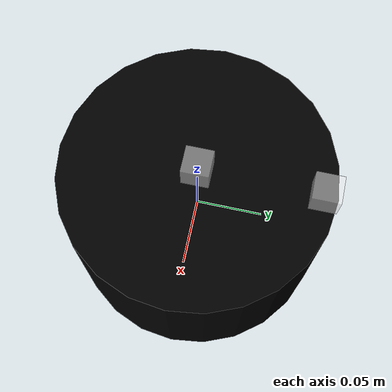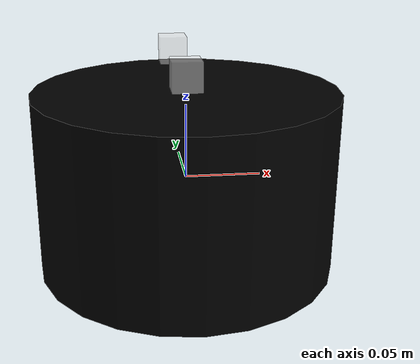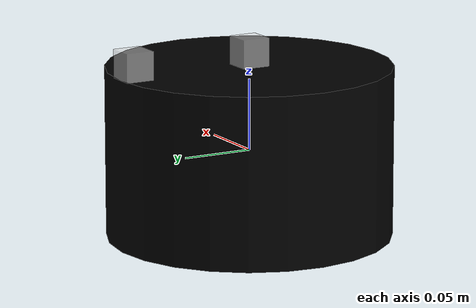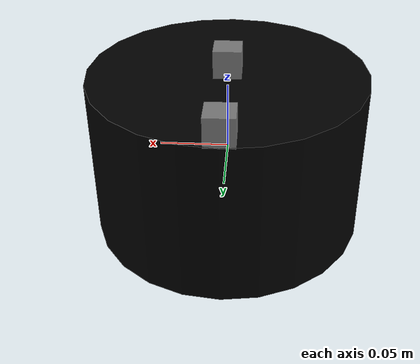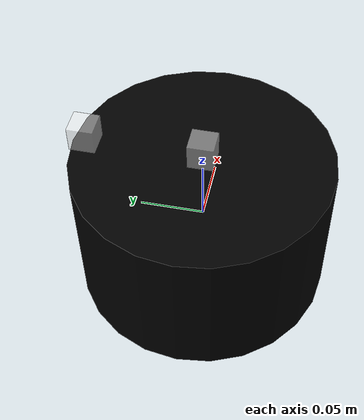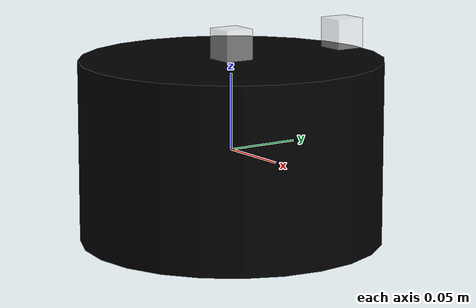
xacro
<?xml version="1.0" encoding="UTF-8"?>
<robot xmlns:xacro="http://www.ros.org/wiki/xacro" name="first_robot">
    <xacro:macro name="base_link" params="length radius">
        <link name="base_link">
            <visual>
                <origin rpy="0 0 0" xyz="0 0 0"/>
                <geometry>
                    <cylinder radius="${radius}" length="${length}"/>
                </geometry>
                <material name="Black">
                    <color rgba="0.0 0.0 0.0 1.0"/>
                </material>
            </visual>
        </link>
    </xacro:macro>
    <xacro:macro name="imu_link" params="name xyz">
        <link name="${name}_link">
            <visual>
                <origin rpy="0 0 0" xyz="0 0 0"/>
                <geometry>
                    <box size="0.02 0.02 0.02"/>
                </geometry>
                <material name="White">
                    <color rgba="1.0 1.0 1.0 0.5"/>
                </material>
            </visual>
        </link>

        <joint name="${name}_joint" type="fixed">
            <parent link="base_link"/>
            <child link="${name}_link"/>
            <origin xyz="${xyz}" rpy="0.0 0.0 0.0"/>
        </joint>
    </xacro:macro>

    <xacro:base_link length="0.12" radius="0.10"/>
    <xacro:imu_link name="imu" xyz="0.0 0.0 0.07"/>
    <xacro:imu_link name="imu2" xyz="0.0 0.09 0.07"/>
</robot>
